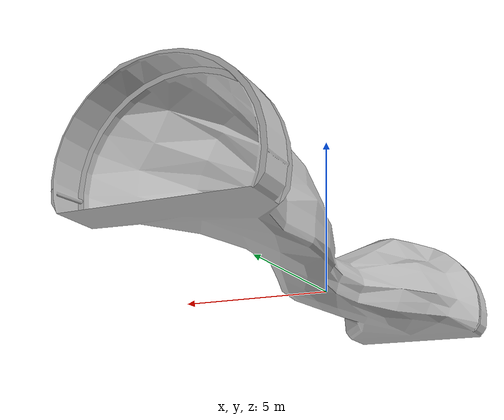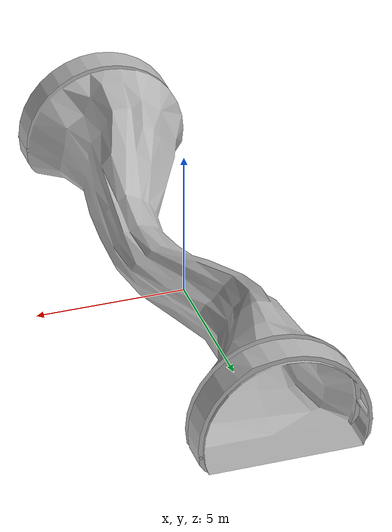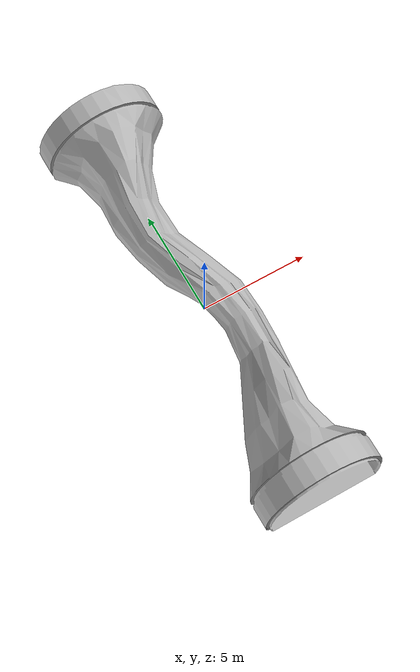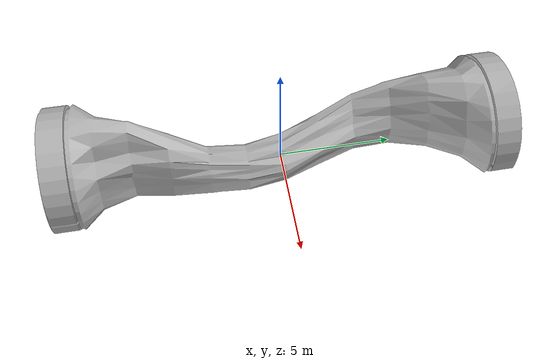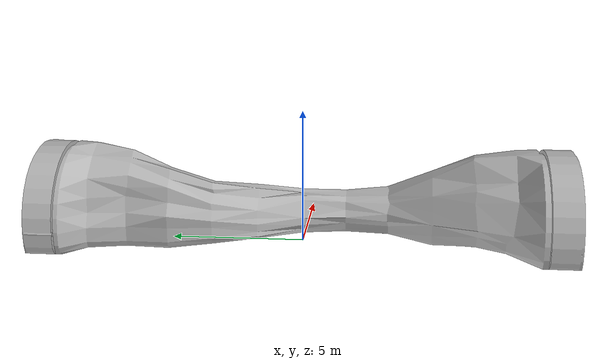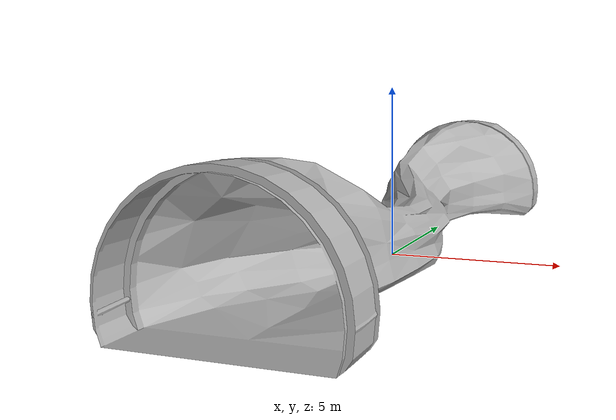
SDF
<?xml version="1.0" ?>
<sdf version="1.6">
  <model name="constrained_tunnel_tile_short">
    <static>true</static>
    <link name="link">
      <collision name="collision">
        <geometry>
          <mesh>
            <uri>model://constrained_tunnel_tile_short/meshes/Constrained_Short.DAE</uri>
          </mesh>
        </geometry>
      </collision>
      <collision name="collision_ground">
        <geometry>
          <box>
            <size>5 20 0.001</size>
          </box>
        </geometry>
      </collision>
      <visual name="visual">
        <geometry>
          <mesh>
            <uri>model://constrained_tunnel_tile_short/meshes/Constrained_Short.DAE</uri>
          </mesh>
        </geometry>
      </visual>
    </link>
  </model>
</sdf>
